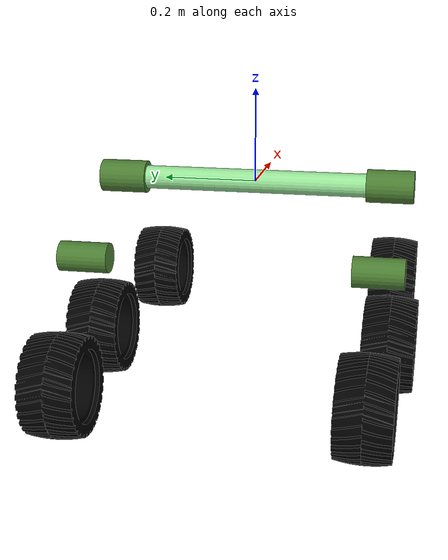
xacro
<?xml version="1.0"?>
<robot xmlns:xacro="http://www.ros.org/wiki/xacro" name="rocker-bogie">

<!-- INCLUDED FILES -->
    <xacro:include filename="rocker/__rocker.xacro"/>
    <xacro:include filename="bogie/__bogie.xacro"/>
    <xacro:include filename="suspension_beam.xacro"/>
    <xacro:include filename="wheel.xacro"/>

<!-- PROPERIES -->
    <!-- SUSPENSION PROPERTIES-->
    <xacro:property name="suspension_width" value=".580"/>

    <xacro:property name="bogie_x" value="-.292"/>
    <xacro:property name="bogie_y" value=" .000"/>
    <xacro:property name="bogie_z" value="-.100"/>

    <xacro:property name="wheel_f_x" value=" .319"/>
    <xacro:property name="wheel_f_y" value=" .000"/>
    <xacro:property name="wheel_f_z" value="-.305"/>

    <xacro:property name="wheel_m_x" value=" .165"/>
    <xacro:property name="wheel_m_y" value=" .020"/>
    <xacro:property name="wheel_m_z" value="-.205"/>

    <xacro:property name="wheel_b_x" value="-.165"/>
    <xacro:property name="wheel_b_y" value="0"/>
    <xacro:property name="wheel_b_z" value="-.205"/>

    <!-- WHEELS POSITIONS -->
    <xacro:property name="wheel_base_f" value=".550"/>
    <xacro:property name="wheel_base_m" value=".600"/>
    <xacro:property name="wheel_base_b" value=".500"/>

    <xacro:property name="h_wheel" value=".250"/>
    <xacro:property name="l_wheel_f" value=".305"/>

    <!-- CUSTOM SIM PROPS -->
    <xacro:property name="h_bogie" value=".170"/>
    <xacro:property name="l_bogie" value=".305"/>
    <xacro:property name="l_wheel_m" value=".200"/>
    <xacro:property name="l_wheel_b" value=".200"/>

    <!-- ELEMENTS DIAMETERS -->
    <xacro:property name="suspension_beam_length" value=".600"/>
    <xacro:property name="suspension_beam_radius" value=".025"/>

    <xacro:property name="rocker_bearing_length" value=".100"/>
    <xacro:property name="rocker_bearing_radius" value=".035"/>

    <xacro:property name="bogie_bearing_length" value=".100"/>
    <xacro:property name="bogie_bearing_radius" value=".030"/>

    <xacro:property name="wheel_width" value=".100"/>
    <xacro:property name="wheel_radius" value=".100"/>

<!-- RELATIVE VARIABLES -->
    <xacro:property name="f_wheel_deviation" value="${(wheel_base_f - wheel_base_m)/2}"/>
    <xacro:property name="b_wheel_deviation" value="${(wheel_base_b - wheel_base_m)/2}"/>
    <xacro:property name="wheel_offset" value=".100"/>

<!-- MAIN LINK -->
    <xacro:suspension_beam name="suspension_beam"/>

<!-- SUSPENSION -->
    <xacro:rocker name="rocker_l" parent="suspension_beam" x="0" y="${suspension_width/2}"    z="0" side="1"/>  <!-- 1 = left -->
    <xacro:rocker name="rocker_r" parent="suspension_beam" x="0" y="${-suspension_width/2}"    z="0" side="-1"/> <!-- -1 = right -->

    <xacro:bogie name="bogie_l" parent="rocker_l_bearing" x="${bogie_x}" y="${bogie_y}"  z="${bogie_z}" side="1"/>
    <xacro:bogie name="bogie_r" parent="rocker_r_bearing" x="${bogie_x}" y="${bogie_y}"  z="${bogie_z}" side="-1"/>

<!-- WHEELS -->
    <xacro:wheel name="fl" parent="rocker_l_bearing" x="${wheel_f_x}" y="${+wheel_f_y}"  z="${wheel_f_z}" side="1"/>
    <xacro:wheel name="fr" parent="rocker_r_bearing" x="${wheel_f_x}" y="${-wheel_f_y}"  z="${wheel_f_z}" side="-1"/>

    <xacro:wheel name="ml" parent="bogie_l_bearing"  x="${wheel_m_x}" y="${+wheel_m_y}"  z="${wheel_m_z}" side="1"/>
    <xacro:wheel name="mr" parent="bogie_r_bearing"  x="${wheel_m_x}" y="${-wheel_m_y}"  z="${wheel_m_z}" side="-1"/>

    <xacro:wheel name="bl" parent="bogie_l_bearing"  x="${wheel_b_x}" y="${+wheel_b_y}"  z="${wheel_b_z}" side="1"/>
    <xacro:wheel name="br" parent="bogie_r_bearing"  x="${wheel_b_x}" y="${-wheel_b_y}"  z="${wheel_b_z}" side="-1"/>

<!-- MY DIFFERENTIAL PLUGIN -->
    <gazebo>
        <plugin name="differential_pid" filename="libDifferentialPID.so">
            <leftJoint>rocker_l_bearing_joint</leftJoint>
            <rightJoint>rocker_r_bearing_joint</rightJoint>
            <topic>/rover/differential_pid</topic>
            <Kp>1000</Kp>
            <Ki>0</Ki>
            <Kd>3000</Kd>
            <limit>10000</limit>
        </plugin>
    </gazebo>

 <!-- DYNAMOMETER PLUGINS -->
    <gazebo>
        <plugin name="rocker_l_bearing_joint_dynamometer" filename="libJointDynamometer.so">
            <joint>rocker_l_bearing_joint</joint>
            <topic>/rover/joint_dynamometer/rocker_l_bearing_joint</topic>
        </plugin>
    </gazebo>

    <gazebo>
        <plugin name="rocker_r_bearing_joint_dynamometer" filename="libJointDynamometer.so">
            <joint>rocker_r_bearing_joint</joint>
            <topic>/rover/joint_dynamometer/rocker_r_bearing_joint</topic>
        </plugin>
    </gazebo>

    <gazebo>
        <plugin name="bogie_l_bearing_joint_dynamometer" filename="libJointDynamometer.so">
            <joint>bogie_l_bearing_joint</joint>
            <topic>/rover/joint_dynamometer/bogie_l_bearing_joint</topic>
        </plugin>
    </gazebo>

    <gazebo>
        <plugin name="bogie_r_bearing_joint_dynamometer" filename="libJointDynamometer.so">
            <joint>bogie_r_bearing_joint</joint>
            <topic>/rover/joint_dynamometer/bogie_r_bearing_joint</topic>
        </plugin>
    </gazebo>

    <gazebo>
        <plugin name="wheel_fl_joint_dynamometer" filename="libJointDynamometer.so">
            <joint>wheel_fl_joint</joint>
            <topic>/rover/joint_dynamometer/wheel_fl_joint</topic>
        </plugin>
    </gazebo>

    <gazebo>
        <plugin name="wheel_fr_joint_dynamometer" filename="libJointDynamometer.so">
            <joint>wheel_fr_joint</joint>
            <topic>/rover/joint_dynamometer/wheel_fr_joint</topic>
        </plugin>
    </gazebo>

    <gazebo>
        <plugin name="wheel_ml_joint_dynamometer" filename="libJointDynamometer.so">
            <joint>wheel_ml_joint</joint>
            <topic>/rover/joint_dynamometer/wheel_ml_joint</topic>
        </plugin>
    </gazebo>

    <gazebo>
        <plugin name="wheel_mr_joint_dynamometer" filename="libJointDynamometer.so">
            <joint>wheel_mr_joint</joint>
            <topic>/rover/joint_dynamometer/wheel_mr_joint</topic>
        </plugin>
    </gazebo>

    <gazebo>
        <plugin name="wheel_bl_joint_dynamometer" filename="libJointDynamometer.so">
            <joint>wheel_bl_joint</joint>
            <topic>/rover/joint_dynamometer/wheel_bl_joint</topic>
        </plugin>
    </gazebo>

    <gazebo>
        <plugin name="wheel_br_joint_dynamometer" filename="libJointDynamometer.so">
            <joint>wheel_br_joint</joint>
            <topic>/rover/joint_dynamometer/wheel_br_joint</topic>
        </plugin>
    </gazebo>

</robot>

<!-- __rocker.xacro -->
<robot xmlns:xacro="http://www.ros.org/wiki/xacro" name="rocker">

<!-- INCLUDE -->
    <xacro:include filename="rocker_bearing.xacro"/>
    <xacro:include filename="rocker_link1.xacro"/>
    <xacro:include filename="rocker_link2.xacro"/>
    <xacro:include filename="rocker_link3.xacro"/>
    <xacro:include filename="rocker_link_diff.xacro"/>

<!-- PROPERTIES -->
    <xacro:property name="rocker_link1_length"      value=".500"/>
    <xacro:property name="rocker_link1_width"       value=".040"/>
    <xacro:property name="rocker_link1_height"      value=".050"/>
    <xacro:property name="rocker_link1_x"            value=".000"/>
    <xacro:property name="rocker_link1_y"            value=".000"/>
    <xacro:property name="rocker_link1_z"            value=".000"/>
    <xacro:property name="rocker_link1_offset_x"    value=".050"/>
    <xacro:property name="rocker_link1_offset_y"    value=".000"/>
    <xacro:property name="rocker_link1_offset_z"    value=".000"/>
    <xacro:property name="rocker_link1_pitch"        value="-.2"/>

    <xacro:property name="rocker_link2_length"      value=".250"/>
    <xacro:property name="rocker_link2_width"       value=".040"/>
    <xacro:property name="rocker_link2_height"      value=".050"/>
    <xacro:property name="rocker_link2_x"            value="${-rocker_link1_length/2+rocker_link1_offset_x}"/>
    <xacro:property name="rocker_link2_y"            value=".000"/>
    <xacro:property name="rocker_link2_z"            value=".000"/>
    <xacro:property name="rocker_link2_offset_x"    value="${-rocker_link2_length/2}"/>
    <xacro:property name="rocker_link2_offset_y"    value=".000"/>
    <xacro:property name="rocker_link2_offset_z"    value=".000"/>
    <xacro:property name="rocker_link2_pitch"        value="1.28"/>

    <xacro:property name="rocker_link3_length"      value=".190"/>
    <xacro:property name="rocker_link3_width"       value=".040"/>
    <xacro:property name="rocker_link3_height"      value=".050"/>
    <xacro:property name="rocker_link3_x"            value="${rocker_link1_length/2+rocker_link1_offset_x}"/>
    <xacro:property name="rocker_link3_y"            value=".000"/>
    <xacro:property name="rocker_link3_z"            value=".000"/>
    <xacro:property name="rocker_link3_offset_x"    value="${rocker_link3_length/2}"/>
    <xacro:property name="rocker_link3_offset_y"    value=".000"/>
    <xacro:property name="rocker_link3_offset_z"    value=".000"/>
    <xacro:property name="rocker_link3_pitch"        value="-1.31"/>

    <xacro:property name="link_diff_lenght" value=".100"/>
    <xacro:property name="link_diff_radius" value=".005"/>

<!-- LINKS -->

    <xacro:macro name="rocker" params="name parent x y z side">

        <xacro:rocker_bearing name="${name}_bearing" parent="${parent}" x="${x}" y="${y}" z="${z}" side="${side}"/>

    </xacro:macro>
</robot>

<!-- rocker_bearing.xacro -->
<robot xmlns:xacro="http://www.ros.org/wiki/xacro" name="rocker">

<!-- GEOMETRY -->
    <xacro:macro name="rocker_geometry">
        <origin rpy="1.57075 0 0"/>
        <geometry>
            <cylinder length="${rocker_bearing_length}" radius="${rocker_bearing_radius}"/>
        </geometry>
    </xacro:macro>

<!-- MATERIAL -->
    <xacro:macro name="rocker_material">
        <material name="dark_green">
            <color rgba=".3 .5 .2 1"/>
        </material>
    </xacro:macro>

<!-- LINK -->
    <xacro:macro name="rocker_bearing" params="name parent x y z side">
        <link name="${name}">
            <visual>
                <xacro:rocker_geometry/>
                <xacro:rocker_material/>
            </visual>
            <collision>
                <xacro:rocker_geometry/>
            </collision>
            <inertial>
                <mass value="3"/>
                <xacro:if value="${side == 1}"> <!-- LEFT-->
                    <origin xyz="0.247725 0.035298 -0.066751" rpy="0 0 0"/>
                    <inertia ixx="0.050813" ixy="0.009439" ixz="-0.021963" iyy="0.135830" iyz="0.004023" izz="0.097893"/>
                </xacro:if>
                <xacro:if value="${side == -1}"> <!-- RIGHT-->
                    <origin xyz="0.247727 -0.035298 -0.066751" rpy="0 0 0"/>
                    <inertia ixx="0.050813" ixy="-0.009439" ixz="-0.021960" iyy="0.135831" iyz="-0.004023" izz="0.097894"/>
                </xacro:if>
            </inertial>
        </link>

        <gazebo reference="${name}">
            <mu1> .2 </mu1>
            <mu2> .2 </mu2>
            <material> Gazebo/Grey </material>
            <selfCollide> True </selfCollide>
        </gazebo>

            <joint name="${name}_joint" type="revolute">
                <parent link="${parent}"/>
                <child link="${name}"/>
                <origin rpy="0 0 0" xyz="${x} ${y} ${z}"/>
                <axis xyz="0 1 0"/>
                <limit effort="10000" velocity="1" lower="-0.5" upper="0.5"/>
                <dynamics damping="2" friction="0"/>
            </joint>

            <gazebo reference="${name}_joint">
                <provideFeedback value="true"/>
            </gazebo>

    </xacro:macro>

</robot>

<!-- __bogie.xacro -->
<robot xmlns:xacro="http://www.ros.org/wiki/xacro" name="bogie">

<!-- INCLUDE -->
    <xacro:include filename="bogie_bearing.xacro"/>
    <xacro:include filename="bogie_link1.xacro"/>
    <xacro:include filename="bogie_link2.xacro"/>

<!-- PROPERTIES -->
    <xacro:property name="bogie_link1_length"      value=".215"/>
    <xacro:property name="bogie_link1_width"       value=".040"/>
    <xacro:property name="bogie_link1_height"      value=".050"/>
    <xacro:property name="bogie_link1_x"            value=".000"/>
    <xacro:property name="bogie_link1_y"            value=".000"/>
    <xacro:property name="bogie_link1_z"            value=".000"/>
    <xacro:property name="bogie_link1_offset_x"    value="${bogie_link1_length/2}"/>
    <xacro:property name="bogie_link1_offset_y"    value=".025"/>
    <xacro:property name="bogie_link1_offset_z"    value=".000"/>
    <xacro:property name="bogie_link1_pitch"        value="-0.38"/>

    <xacro:property name="bogie_link2_length"      value=".215"/>
    <xacro:property name="bogie_link2_width"       value=".040"/>
    <xacro:property name="bogie_link2_height"      value=".050"/>
    <xacro:property name="bogie_link2_x"            value=".000"/>
    <xacro:property name="bogie_link2_y"            value=".000"/>
    <xacro:property name="bogie_link2_z"            value=".000"/>
    <xacro:property name="bogie_link2_offset_x"    value="${-bogie_link2_length/2}"/>
    <xacro:property name="bogie_link2_offset_y"    value="-.025"/>
    <xacro:property name="bogie_link2_offset_z"    value=".000"/>
    <xacro:property name="bogie_link2_pitch"        value="0.38"/>

<!-- LINKS -->
    <xacro:macro name="bogie" params="name parent x y z side">

        <xacro:bogie_bearing name="${name}_bearing" parent="${parent}" x="${x}" y="${y}" z="${z}" side="${side}"/>

    </xacro:macro>

</robot>

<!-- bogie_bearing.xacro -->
<robot xmlns:xacro="http://www.ros.org/wiki/xacro" name="bogie_bearing">

<!-- GEOMETRY -->
    <xacro:macro name="bogie_bearing_geometry">
        <origin rpy="1.57075 0 0"/>
        <geometry>
            <cylinder length="${bogie_bearing_length}" radius="${bogie_bearing_radius}"/>
        </geometry>
    </xacro:macro>

<!-- MATERIAL -->
    <xacro:macro name="bogie_bearing_material">
        <material name="dark_green">
            <color rgba=".3 .5 .2 1"/>
        </material>
    </xacro:macro>

<!-- LINK -->
    <xacro:macro name="bogie_bearing" params="name parent x y z side">
        <link name="${name}">
            <visual>
                <xacro:bogie_bearing_geometry/>
                <xacro:bogie_bearing_material/>
            </visual>
            <collision>
                <xacro:bogie_bearing_geometry/>
            </collision>
            <inertial>
                <mass value="6.143721"/>
                <xacro:if value="${side == 1}"> <!-- LEFT-->
                    <origin xyz="-0.000010 0.045682 0.012347" rpy="0 0 0"/>
                    <inertia ixx="0.082737" ixy="0.015401" ixz="-0.000002" iyy="0.236740" iyz="0.013790" izz="0.176983"/>
                </xacro:if>
                <xacro:if value="${side == -1}"> <!-- RIGHT-->
                    <origin xyz="-0.000007 -0.045682 0.012347" rpy="0 0 0"/>
                    <inertia ixx="0.082737" ixy="-0.015402" ixz="0.000003" iyy="0.236740" iyz="-0.013790" izz="0.176983"/>
                </xacro:if>
            </inertial>
        </link>

        <gazebo reference="${name}">
            <mu1> .2 </mu1>
            <mu2> .2 </mu2>
            <material> Gazebo/Grey </material>
            <selfCollide> True </selfCollide>
        </gazebo>

            <joint name="${name}_joint" type="revolute">
                <parent link="${parent}"/>
                <child link="${name}"/>
                <origin rpy="0 0 0" xyz="${x} ${y} ${z}"/>
                <axis xyz="0 1 0"/>
                <limit effort="1" velocity="1" lower="-0.5" upper="0.5"/>
                <dynamics damping="1"/>
            </joint>

            <gazebo reference="${name}_joint">
                <provideFeedback value="true"/>
            </gazebo>

            <transmission name="${name}_transmission">
                <type>transmission_interface/SimpleTransmission</type>
                <joint name="${name}_joint">
                    <hardwareInterface>EffortJointInterface</hardwareInterface>
                </joint>
                <actuator name="${name}_motor">
                    <hardwareInterface>EffortJointInterface</hardwareInterface>
                    <mechanicalReduction>1</mechanicalReduction>
                </actuator>
            </transmission>

    </xacro:macro>

</robot>

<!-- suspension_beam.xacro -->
<robot xmlns:xacro="http://www.ros.org/wiki/xacro" name="suspension_beam">

<!-- GEOMETRY -->
    <xacro:macro name="suspension_beam_geometry">
        <origin rpy="1.57075 0 0" xyz="0 0 0"/>
        <geometry>
            <cylinder length="${suspension_beam_length}" radius="${suspension_beam_radius}"/>
        </geometry>
    </xacro:macro>

<!-- MATERIAL -->
    <xacro:macro name="suspension_beam_material">
        <material name="light_green">
            <color rgba=".6 .9 .6 1"/>
        </material>
    </xacro:macro>

<!-- LINK -->
    <xacro:macro name="suspension_beam" params="name">

    <!-- DUMMY LINK -->
        <link name="base_link">
        </link>
        <joint name="base_jonit" type="fixed">
            <parent link="base_link"/>
            <child link="${name}"/>
        </joint>

    <!-- MAIN LINK -->
        <link name="${name}">
            <visual>
                <xacro:suspension_beam_geometry/>
                <xacro:suspension_beam_material/>
            </visual>
            <collision>
                <xacro:suspension_beam_geometry/>
            </collision>
            <inertial>
                <mass value="0.001"/>
                <inertia ixx="0.000005" ixy="0" ixz="0" iyy="0.000005" iyz="0" izz="0.000005"/>
            </inertial>
        </link>

        <gazebo reference="base_link">
            <mu1> .2 </mu1>
            <mu2> .2 </mu2>
            <material> Gazebo/Wh </material>
            <selfCollide> True </selfCollide>
        </gazebo>

    </xacro:macro>

</robot>

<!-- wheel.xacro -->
<robot xmlns:xacro="http://www.ros.org/wiki/xacro" name="wheel">

<!-- GEOMETRY -->
    <xacro:macro name="wheel_geometry">
        <origin rpy="1.57075 0 0"/>
        <geometry>
            <cylinder length="${wheel_width}" radius="${wheel_radius}"/>
        </geometry>
    </xacro:macro>

<!-- VISUAL -->
    <xacro:macro name="wheel_visual">
        <origin xyz="0.01 -0.05 -0.13" rpy="0 0 1.57075"/>
        <geometry>
            <mesh filename="package://phobos_meshes/rover_stl/kolo_stl.STL" scale="0.001 0.001 0.001"/>
        </geometry>
    </xacro:macro>

<!-- MATERIAL -->
    <xacro:macro name="wheel_material">
        <material name="black">
            <color rgba=".0 .0 .0 1"/>
        </material>
    </xacro:macro>

<!-- LINK -->
    <xacro:macro name="wheel" params="name parent x y z side">

        <link name="wheel_${name}">
            <visual>
                <xacro:wheel_visual/>
                <xacro:wheel_material/>
            </visual>
            <collision>
                <xacro:wheel_geometry/>
            </collision>
            <inertial>
                 <mass value="1.67"/>
                 <origin xyz="0 0 0" rpy="0 0 0"/>
                 <inertia ixx=".007228" ixy="0" ixz="0" iyy=".011596" iyz="0" izz=".007228"/>
            </inertial>
        </link>

        <gazebo reference="wheel_${name}">
            <mu1 value="0.5"/>
            <mu2 value="0.5"/>
            <material value="Gazebo/Black"/>
            <selfCollide value="True"/>
        </gazebo>

        <joint name="wheel_${name}_joint" type="continuous">
            <parent link="${parent}"/>
            <child link="wheel_${name}"/>
            <origin rpy="${-side*0.02} 0 0" xyz="${x} ${y} ${z}"/>
            <axis xyz="0 1 0"/>
            <limit effort="100" velocity="10"/>
            <dynamics damping="1"/>
        </joint>

        <gazebo reference="wheel_${name}_joint">
            <provideFeedback value="true"/>
        </gazebo>

        <gazebo>
            <plugin name="joint_limiter_wheel_${name}" filename="libJointLimiter.so">
                <joint>wheel_${name}_joint</joint>
                <topic>/simulation/controller/vel/wheel_${name}</topic>
                <lower>-9999999</lower>
                <upper>9999999</upper>
            </plugin>
        </gazebo>
        <gazebo>
            <plugin name="joint_encoder_wheel_${name}" filename="libJointEncoder.so">
                <joint>wheel_${name}_joint</joint>
                <topic>/simulation/encoder/rel/wheel_${name}</topic>
                <lower>0</lower>
                <upper>9999999</upper>
                <absolute>0</absolute>
                <resolution>3600</resolution>
            </plugin>
        </gazebo>
        <gazebo>
            <plugin name="joint_controller_wheel_${name}" filename="libControllerPID.so">
                <joint>wheel_${name}_joint</joint>
                <topic>/simulation/controller/vel/wheel_${name}</topic>
                <Kp>2</Kp>
                <Ki>0.1</Ki>
                <Kd>0.1</Kd>
                <limit>100</limit>
            </plugin>
        </gazebo>

    </xacro:macro>
</robot>
